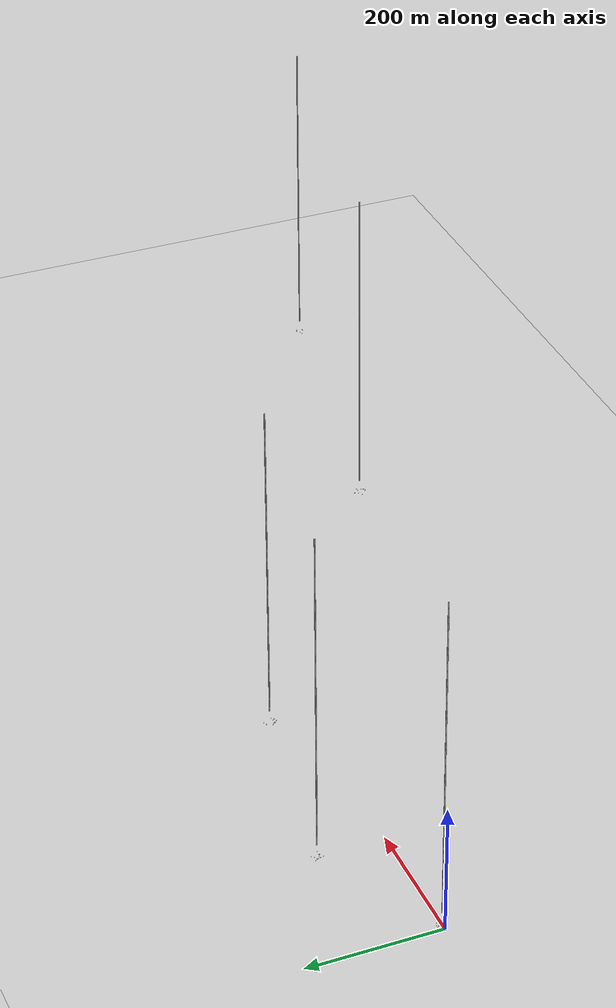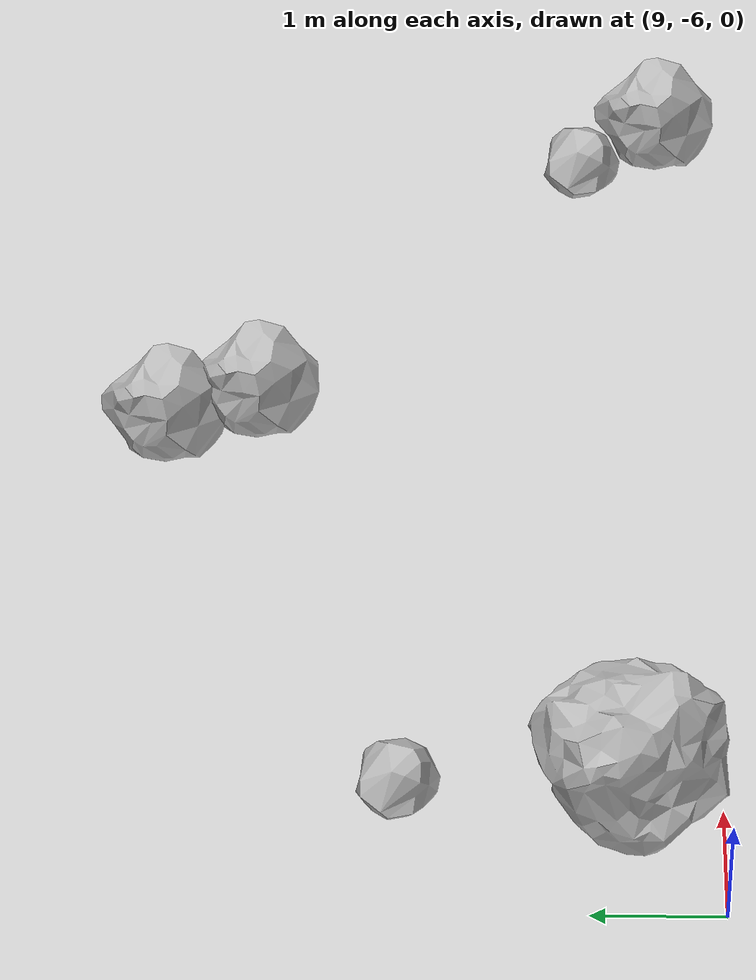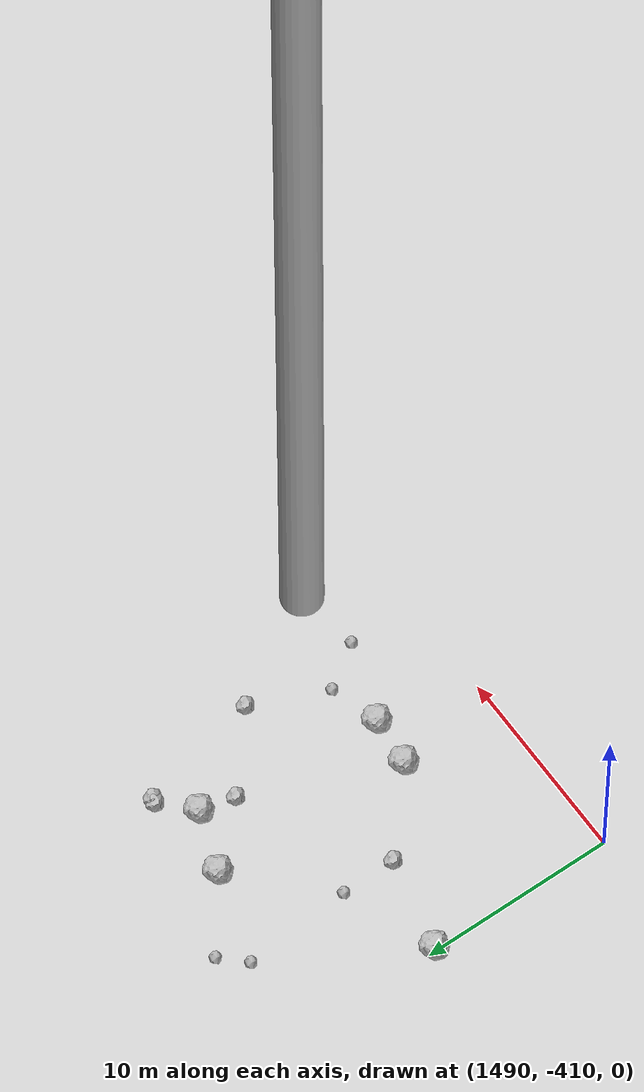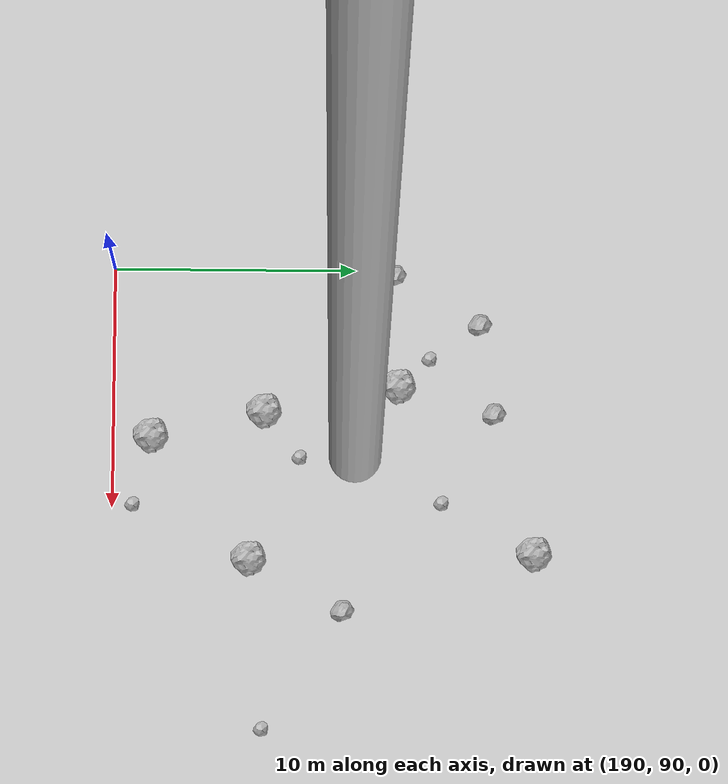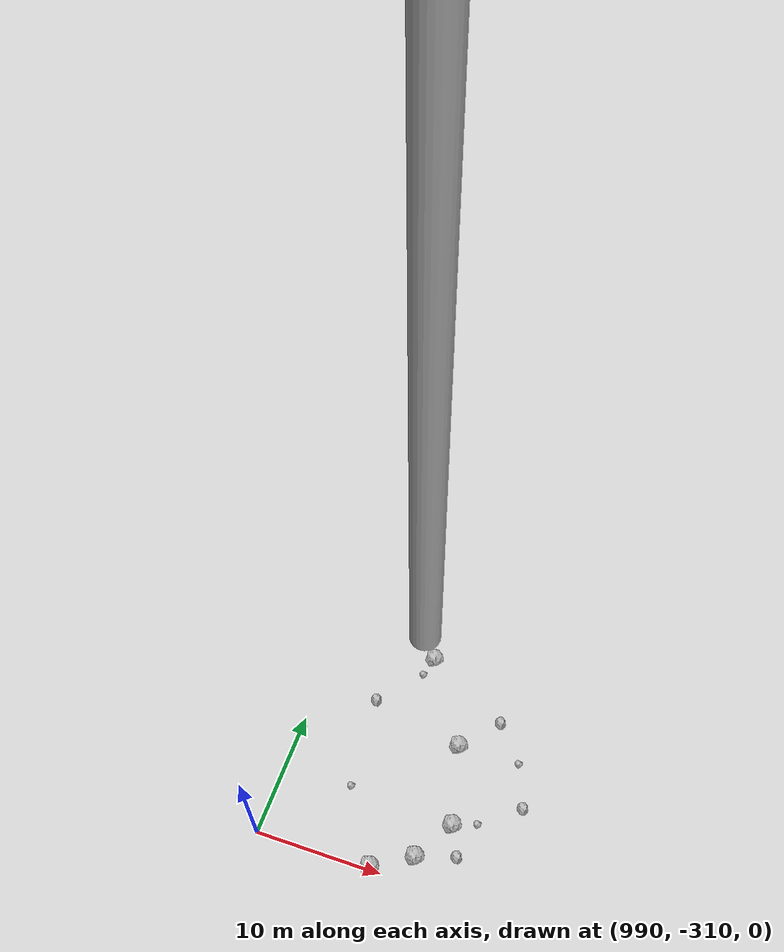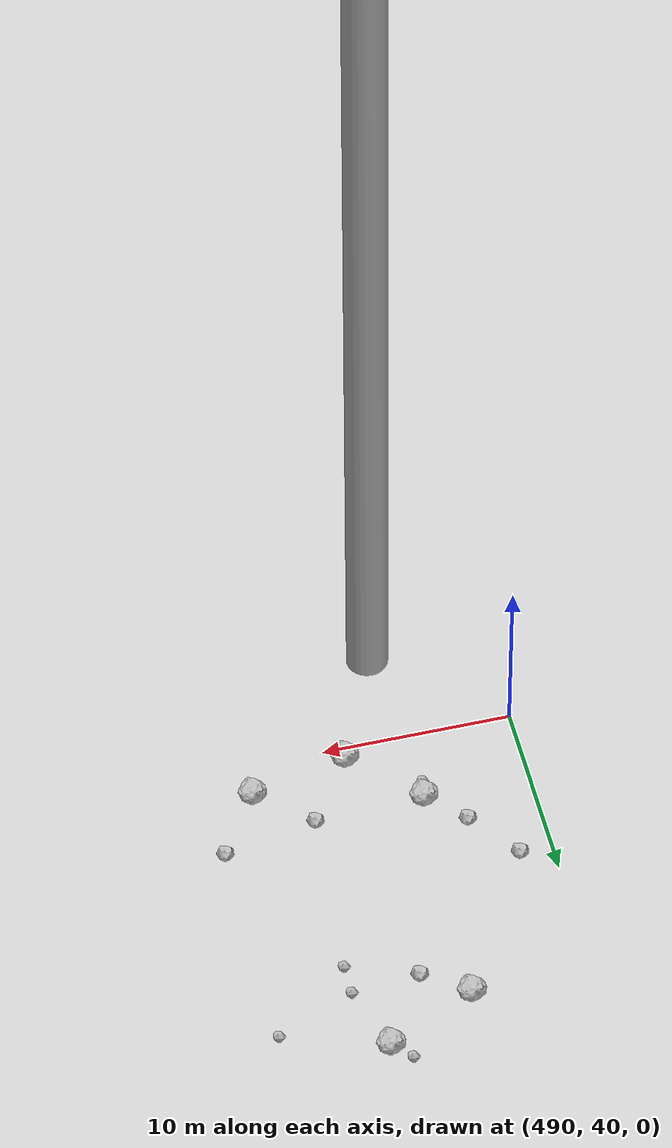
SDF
<?xml version="1.0" ?>
<sdf version="1.6">
  <world name="default">

    <include>
      <uri>model://custom_ground</uri>
    </include>

    <include>
      <uri>model://sun</uri>
    </include>

    <spherical_coordinates>
      <surface_model>EARTH_WGS84</surface_model>
      <latitude_deg>38.161479</latitude_deg>
      <longitude_deg>-122.454630</longitude_deg>
      <elevation>488.0</elevation>
      <heading_deg>90</heading_deg>
    </spherical_coordinates>

    <model name="rock1_0_0">
      <include>
        <uri>model://rock1</uri>
        <pose>5.995781987317786 3.7091688640189453 0.5 0 0 0</pose>
      </include>
    </model>
    <model name="rock1_0_1">
      <include>
        <uri>model://rock1</uri>
        <pose>7.985189737958396 5.699995985957596 0.5 0 0 0</pose>
      </include>
    </model>
    <model name="rock1_0_2">
      <include>
        <uri>model://rock1</uri>
        <pose>10.202080193423935 -5.291725124340038 0.5 0 0 0</pose>
      </include>
    </model>
    <model name="rock1_0_3">
      <include>
        <uri>model://rock1</uri>
        <pose>4.884607211356684 -1.074615949735982 0.5 0 0 0</pose>
      </include>
    </model>
    <model name="rock1_0_4">
      <include>
        <uri>model://rock1</uri>
        <pose>7.746010384763206 6.421832325341796 0.5 0 0 0</pose>
      </include>
    </model>
    <model name="rock2_0_0">
      <include>
        <uri>model://rock2</uri>
        <pose>14.16067028881862 -2.4129295663518953 0.3 0 0 0</pose>
      </include>
    </model>
    <model name="rock2_0_1">
      <include>
        <uri>model://rock2</uri>
        <pose>6.764475197889325 7.580076908246241 0.3 0 0 0</pose>
      </include>
    </model>
    <model name="rock2_0_2">
      <include>
        <uri>model://rock2</uri>
        <pose>13.881933579063066 -1.70374575634575 0.3 0 0 0</pose>
      </include>
    </model>
    <model name="rock2_0_3">
      <include>
        <uri>model://rock2</uri>
        <pose>14.021093520788003 6.546153463047663 0.3 0 0 0</pose>
      </include>
    </model>
    <model name="rock2_0_4">
      <include>
        <uri>model://rock2</uri>
        <pose>17.358597708575132 -5.618424271793431 0.3 0 0 0</pose>
      </include>
    </model>
    <model name="rock3_0_0">
      <include>
        <uri>model://rock3</uri>
        <pose>9.531715888267271 7.9310602115612525 0.2 0 0 0</pose>
      </include>
    </model>
    <model name="rock3_0_1">
      <include>
        <uri>model://rock3</uri>
        <pose>10.112802411146916 -3.601189142310912 0.2 0 0 0</pose>
      </include>
    </model>
    <model name="rock3_0_2">
      <include>
        <uri>model://rock3</uri>
        <pose>4.6801429326618305 2.435508990482603 0.2 0 0 0</pose>
      </include>
    </model>
    <model name="rock3_0_3">
      <include>
        <uri>model://rock3</uri>
        <pose>16.88658951446687 -5.020055120522704 0.2 0 0 0</pose>
      </include>
    </model>
    <model name="rock3_0_4">
      <include>
        <uri>model://rock3</uri>
        <pose>4.497295534760132 -1.544616569698956 0.2 0 0 0</pose>
      </include>
    </model>
    <model name="rock1_1_0">
      <include>
        <uri>model://rock1</uri>
        <pose>195.97185926588008 96.2530708774571 0.5 0 0 0</pose>
      </include>
    </model>
    <model name="rock1_1_1">
      <include>
        <uri>model://rock1</uri>
        <pose>197.0355652117967 91.5667744033977 0.5 0 0 0</pose>
      </include>
    </model>
    <model name="rock1_1_2">
      <include>
        <uri>model://rock1</uri>
        <pose>202.1267366664151 95.67702554216767 0.5 0 0 0</pose>
      </include>
    </model>
    <model name="rock1_1_3">
      <include>
        <uri>model://rock1</uri>
        <pose>194.9058197209677 101.81303985596391 0.5 0 0 0</pose>
      </include>
    </model>
    <model name="rock1_1_4">
      <include>
        <uri>model://rock1</uri>
        <pose>201.84695166944118 107.49204377158021 0.5 0 0 0</pose>
      </include>
    </model>
    <model name="rock2_1_0">
      <include>
        <uri>model://rock2</uri>
        <pose>204.2356428908764 99.58697523290584 0.3 0 0 0</pose>
      </include>
    </model>
    <model name="rock2_1_1">
      <include>
        <uri>model://rock2</uri>
        <pose>190.21147174635757 101.62956713100736 0.3 0 0 0</pose>
      </include>
    </model>
    <model name="rock2_1_2">
      <include>
        <uri>model://rock2</uri>
        <pose>192.2573472735293 105.20188797414022 0.3 0 0 0</pose>
      </include>
    </model>
    <model name="rock2_1_3">
      <include>
        <uri>model://rock2</uri>
        <pose>194.61925510761105 100.42577332318602 0.3 0 0 0</pose>
      </include>
    </model>
    <model name="rock2_1_4">
      <include>
        <uri>model://rock2</uri>
        <pose>195.98488524676037 105.81792564901015 0.3 0 0 0</pose>
      </include>
    </model>
    <model name="rock3_1_0">
      <include>
        <uri>model://rock3</uri>
        <pose>199.7045180676582 103.63546922385775 0.2 0 0 0</pose>
      </include>
    </model>
    <model name="rock3_1_1">
      <include>
        <uri>model://rock3</uri>
        <pose>209.13726662857215 96.25310963152555 0.2 0 0 0</pose>
      </include>
    </model>
    <model name="rock3_1_2">
      <include>
        <uri>model://rock3</uri>
        <pose>197.8384962009342 97.73362974970196 0.2 0 0 0</pose>
      </include>
    </model>
    <model name="rock3_1_3">
      <include>
        <uri>model://rock3</uri>
        <pose>193.6836612844933 103.09526726580862 0.2 0 0 0</pose>
      </include>
    </model>
    <model name="rock3_1_4">
      <include>
        <uri>model://rock3</uri>
        <pose>199.8449470755664 90.81742591319073 0.2 0 0 0</pose>
      </include>
    </model>
    <model name="rock1_2_0">
      <include>
        <uri>model://rock1</uri>
        <pose>495.6532246338544 44.14366875880363 0.5 0 0 0</pose>
      </include>
    </model>
    <model name="rock1_2_1">
      <include>
        <uri>model://rock1</uri>
        <pose>499.0229951136858 40.7379145785594 0.5 0 0 0</pose>
      </include>
    </model>
    <model name="rock1_2_2">
      <include>
        <uri>model://rock1</uri>
        <pose>504.1891632195263 41.9461576138959 0.5 0 0 0</pose>
      </include>
    </model>
    <model name="rock1_2_3">
      <include>
        <uri>model://rock1</uri>
        <pose>496.2694206477706 56.589040078981725 0.5 0 0 0</pose>
      </include>
    </model>
    <model name="rock1_2_4">
      <include>
        <uri>model://rock1</uri>
        <pose>500.95795762238043 58.757636529256125 0.5 0 0 0</pose>
      </include>
    </model>
    <model name="rock2_2_0">
      <include>
        <uri>model://rock2</uri>
        <pose>506.372405983645 45.31907377166456 0.3 0 0 0</pose>
      </include>
    </model>
    <model name="rock2_2_1">
      <include>
        <uri>model://rock2</uri>
        <pose>491.7249357750813 48.70339138900515 0.3 0 0 0</pose>
      </include>
    </model>
    <model name="rock2_2_2">
      <include>
        <uri>model://rock2</uri>
        <pose>493.784087404614 46.01687448536415 0.3 0 0 0</pose>
      </include>
    </model>
    <model name="rock2_2_3">
      <include>
        <uri>model://rock2</uri>
        <pose>501.4199255696698 44.35207127177375 0.3 0 0 0</pose>
      </include>
    </model>
    <model name="rock2_2_4">
      <include>
        <uri>model://rock2</uri>
        <pose>498.53725578329994 54.92627697854459 0.3 0 0 0</pose>
      </include>
    </model>
    <model name="rock3_2_0">
      <include>
        <uri>model://rock3</uri>
        <pose>502.071294112431 55.162921603859495 0.2 0 0 0</pose>
      </include>
    </model>
    <model name="rock3_2_1">
      <include>
        <uri>model://rock3</uri>
        <pose>506.21221962168306 56.90347839476587 0.2 0 0 0</pose>
      </include>
    </model>
    <model name="rock3_2_2">
      <include>
        <uri>model://rock3</uri>
        <pose>499.99033064621926 59.63874861033872 0.2 0 0 0</pose>
      </include>
    </model>
    <model name="rock3_2_3">
      <include>
        <uri>model://rock3</uri>
        <pose>502.0825823391031 53.51850628918629 0.2 0 0 0</pose>
      </include>
    </model>
    <model name="rock3_2_4">
      <include>
        <uri>model://rock3</uri>
        <pose>495.4295965300935 43.09979419828312 0.2 0 0 0</pose>
      </include>
    </model>
    <model name="rock1_3_0">
      <include>
        <uri>model://rock1</uri>
        <pose>998.2106208094666 -291.67146009803446 0.5 0 0 0</pose>
      </include>
    </model>
    <model name="rock1_3_1">
      <include>
        <uri>model://rock1</uri>
        <pose>1002.4553907302327 -298.37466826354165 0.5 0 0 0</pose>
      </include>
    </model>
    <model name="rock1_3_2">
      <include>
        <uri>model://rock1</uri>
        <pose>1002.0663301430404 -307.94754083143 0.5 0 0 0</pose>
      </include>
    </model>
    <model name="rock1_3_3">
      <include>
        <uri>model://rock1</uri>
        <pose>1003.9663894755535 -304.69581213467654 0.5 0 0 0</pose>
      </include>
    </model>
    <model name="rock1_3_4">
      <include>
        <uri>model://rock1</uri>
        <pose>999.0962930155594 -309.7688752725992 0.5 0 0 0</pose>
      </include>
    </model>
    <model name="rock2_3_0">
      <include>
        <uri>model://rock2</uri>
        <pose>1005.0426423545632 -306.95348799351103 0.3 0 0 0</pose>
      </include>
    </model>
    <model name="rock2_3_1">
      <include>
        <uri>model://rock2</uri>
        <pose>1005.0182311652384 -295.37376808972425 0.3 0 0 0</pose>
      </include>
    </model>
    <model name="rock2_3_2">
      <include>
        <uri>model://rock2</uri>
        <pose>990.1721905286267 -301.0640743213226 0.3 0 0 0</pose>
      </include>
    </model>
    <model name="rock2_3_3">
      <include>
        <uri>model://rock2</uri>
        <pose>1008.691420067077 -301.6674096356207 0.3 0 0 0</pose>
      </include>
    </model>
    <model name="rock2_3_4">
      <include>
        <uri>model://rock2</uri>
        <pose>994.891230425815 -296.6868371972233 0.3 0 0 0</pose>
      </include>
    </model>
    <model name="rock3_3_0">
      <include>
        <uri>model://rock3</uri>
        <pose>998.0008833262132 -291.0224605562833 0.2 0 0 0</pose>
      </include>
    </model>
    <model name="rock3_3_1">
      <include>
        <uri>model://rock3</uri>
        <pose>995.5019326428818 -304.21376151429575 0.2 0 0 0</pose>
      </include>
    </model>
    <model name="rock3_3_2">
      <include>
        <uri>model://rock3</uri>
        <pose>1005.7482455469036 -303.9994633084281 0.2 0 0 0</pose>
      </include>
    </model>
    <model name="rock3_3_3">
      <include>
        <uri>model://rock3</uri>
        <pose>1007.3651339457617 -298.2597767581611 0.2 0 0 0</pose>
      </include>
    </model>
    <model name="rock3_3_4">
      <include>
        <uri>model://rock3</uri>
        <pose>997.7360298121887 -293.2615658803538 0.2 0 0 0</pose>
      </include>
    </model>
    <model name="rock1_4_0">
      <include>
        <uri>model://rock1</uri>
        <pose>1501.2297652305074 -405.01811109875945 0.5 0 0 0</pose>
      </include>
    </model>
    <model name="rock1_4_1">
      <include>
        <uri>model://rock1</uri>
        <pose>1502.2108313510098 -395.5614623905792 0.5 0 0 0</pose>
      </include>
    </model>
    <model name="rock1_4_2">
      <include>
        <uri>model://rock1</uri>
        <pose>1499.1274666713691 -394.465740379757 0.5 0 0 0</pose>
      </include>
    </model>
    <model name="rock1_4_3">
      <include>
        <uri>model://rock1</uri>
        <pose>1498.7398163117675 -404.78032231320145 0.5 0 0 0</pose>
      </include>
    </model>
    <model name="rock1_4_4">
      <include>
        <uri>model://rock1</uri>
        <pose>1490.1552309136182 -400.3454417365443 0.5 0 0 0</pose>
      </include>
    </model>
    <model name="rock2_4_0">
      <include>
        <uri>model://rock2</uri>
        <pose>1494.8619696861192 -401.41199516799514 0.3 0 0 0</pose>
      </include>
    </model>
    <model name="rock2_4_1">
      <include>
        <uri>model://rock2</uri>
        <pose>1503.7065466375805 -394.1247975716999 0.3 0 0 0</pose>
      </include>
    </model>
    <model name="rock2_4_2">
      <include>
        <uri>model://rock2</uri>
        <pose>1501.7978165791383 -397.3764205419585 0.3 0 0 0</pose>
      </include>
    </model>
    <model name="rock2_4_3">
      <include>
        <uri>model://rock2</uri>
        <pose>1505.4282498401535 -400.4822679064923 0.3 0 0 0</pose>
      </include>
    </model>
    <model name="rock2_4_4">
      <include>
        <uri>model://rock2</uri>
        <pose>1503.9909860189935 -394.1834426472733 0.3 0 0 0</pose>
      </include>
    </model>
    <model name="rock3_4_0">
      <include>
        <uri>model://rock3</uri>
        <pose>1505.2739290325057 -406.5227941415361 0.2 0 0 0</pose>
      </include>
    </model>
    <model name="rock3_4_1">
      <include>
        <uri>model://rock3</uri>
        <pose>1495.5769717522169 -391.89370309639224 0.2 0 0 0</pose>
      </include>
    </model>
    <model name="rock3_4_2">
      <include>
        <uri>model://rock3</uri>
        <pose>1503.7779916365535 -404.3419655896161 0.2 0 0 0</pose>
      </include>
    </model>
    <model name="rock3_4_3">
      <include>
        <uri>model://rock3</uri>
        <pose>1494.4305571277564 -393.08853959613606 0.2 0 0 0</pose>
      </include>
    </model>
    <model name="rock3_4_4">
      <include>
        <uri>model://rock3</uri>
        <pose>1494.8454625415275 -398.6374313669164 0.2 0 0 0</pose>
      </include>
    </model>

    <model name="cylinder_1">
      <static>true</static>
      <link name="link">
        <visual name="visual">
          <geometry>
            <cylinder>
              <radius>1</radius>
              <length>500</length>
            </cylinder>
          </geometry>
        </visual>
      </link>
      <pose>10 0 270 0 0 0</pose>
    </model>

    <model name="cylinder_2">
      <static>true</static>
      <link name="link">
        <visual name="visual">
          <geometry>
            <cylinder>
              <radius>1</radius>
              <length>500</length>
            </cylinder>
          </geometry>
        </visual>
      </link>
      <pose>200 100 270 0 0 0</pose>
    </model>

    <model name="cylinder_3">
      <static>true</static>
      <link name="link">
        <visual name="visual">
          <geometry>
            <cylinder>
              <radius>1</radius>
              <length>500</length>
            </cylinder>
          </geometry>
        </visual>
      </link>
      <pose>500 50 270 0 0 0</pose>
    </model>

    <model name="cylinder_4">
      <static>true</static>
      <link name="link">
        <visual name="visual">
          <geometry>
            <cylinder>
              <radius>1</radius>
              <length>500</length>
            </cylinder>
          </geometry>
        </visual>
      </link>
      <pose>1000 -300 270 0 0 0</pose>
    </model>

    <model name="cylinder_5">
      <static>true</static>
      <link name="link">
        <visual name="visual">
          <geometry>
            <cylinder>
              <radius>1</radius>
              <length>500</length>
            </cylinder>
          </geometry>
        </visual>
      </link>
      <pose>1500 -400 270 0 0 0</pose>
    </model>

  </world>
</sdf>

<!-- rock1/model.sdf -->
<sdf version="1.6">
  <model name="rock1">
    <static>true</static> <!-- Set to true if the model should not move -->
    <pose>0 0 0 0 0 0</pose>

    <!--z offset is 0.5 for full scale-->

    <link name="link">
      <collision name="rock1_collision">
        <geometry>
          <mesh>
            <uri>model://meshes/rock1.dae</uri>
          </mesh>
        </geometry>
      </collision>
      <visual name="rock1_visual">
        <geometry>
          <mesh>
            <uri>model://meshes/rock1.dae</uri>
          </mesh>
        </geometry>
        <material>
          <script>
            <uri>model://materials/scripts/sand_pebbles.material</uri>
            <name>custom_ground/Image</name>
          </script>
        </material>
      </visual>
    </link>
  </model>
</sdf>

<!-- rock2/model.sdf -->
<sdf version="1.6">
  <model name="rock2">
    <static>true</static> <!-- Set to true if the model should not move -->
    <pose>0 0 0 0 0 0</pose>

    <!--z offset is 0.3 for full scale-->

    <link name="link">
      <collision name="rock2_collision">
        <geometry>
          <mesh>
            <uri>model://meshes/rock2.dae</uri>
          </mesh>
        </geometry>
      </collision>
      <visual name="rock2_visual">
        <geometry>
          <mesh>
            <uri>model://meshes/rock2.dae</uri>
          </mesh>
        </geometry>
        <material>
          <script>
            <uri>model://materials/scripts/sand_pebbles.material</uri>
            <name>custom_ground/Image</name>
          </script>
        </material>
      </visual>
    </link>
  </model>
</sdf>

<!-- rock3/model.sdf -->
<sdf version="1.6">
  <model name="rock3">
    <static>true</static> <!-- Set to true if the model should not move -->
    <pose>0 0 0 0 0 0</pose>

    <!--z offset is 0.2 for full scale-->

    <link name="link">
      <collision name="rock3_collision">
        <geometry>
          <mesh>
            <uri>model://meshes/rock3.dae</uri>
          </mesh>
        </geometry>
      </collision>
      <visual name="rock3_visual">
        <geometry>
          <mesh>
            <uri>model://meshes/rock3.dae</uri>
          </mesh>
        </geometry>
        <material>
          <script>
            <uri>model://materials/scripts/sand_pebbles.material</uri>
            <name>custom_ground/Image</name>
          </script>
        </material>
      </visual>
    </link>
  </model>
</sdf>

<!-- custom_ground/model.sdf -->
<sdf version="1.6">
  <model name="custom_ground">
    <static>true</static> <!-- Ground is static and immovable -->
    <link name="ground_link">
      <pose>240 0 0 0 0 0</pose> <!-- Position and orientation relative to the world -->
      <!-- Visual Representation -->
      <visual name="ground_visual">
        <geometry>
          <plane>
            <normal>0 0 1</normal> <!-- Upward facing plane -->
            <size>500 500</size> <!-- Size of the plane -->
          </plane>
        </geometry>
        <material>
          <script>
            <uri>model://materials/scripts/sand_pebbles.material</uri>
            <name>custom_ground/Image</name>
          </script>
        </material>
      </visual>

      <!-- Collision Representation -->
      <collision name="ground_collision">
        <geometry>
          <plane>
            <normal>0 0 1</normal>
            <size>100 100</size>
          </plane>
        </geometry>
      </collision>

    </link>
  </model>
</sdf>
